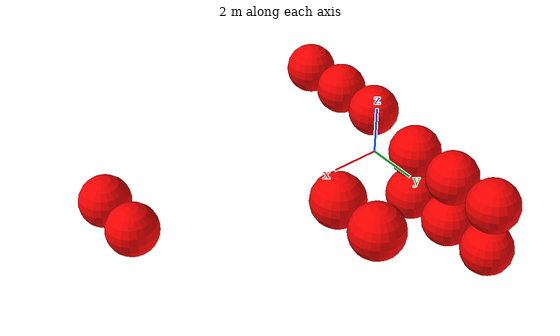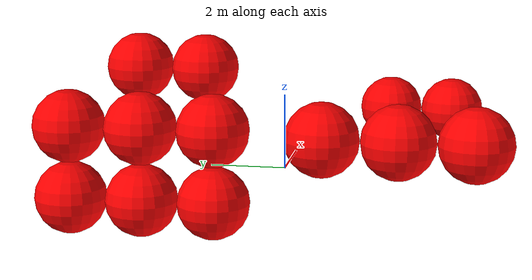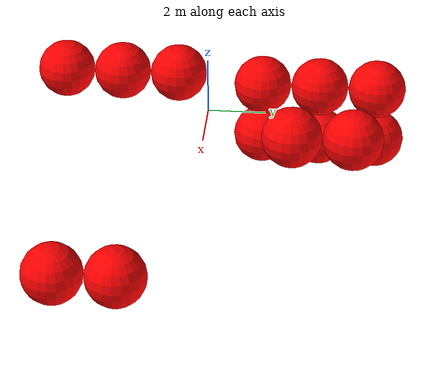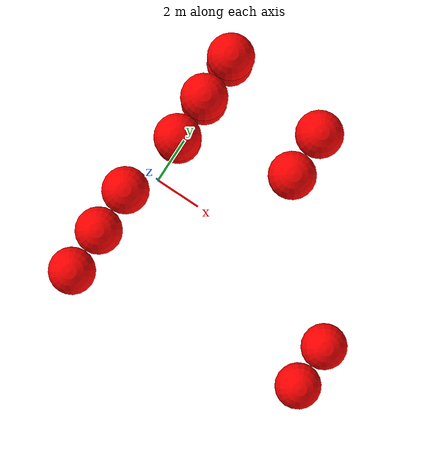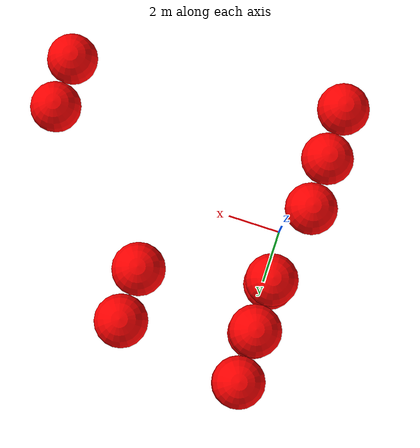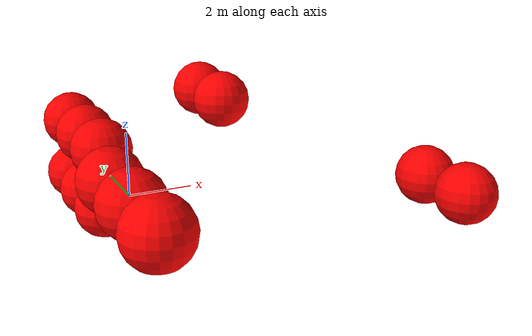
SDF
<sdf version="1.8">
 <world name="3d_world">
  <model name="obstacle_1" canonical_link="obstacle">
   <static>true</static>
   <pose relative_to="world">-0.27 1.91 -1.00 0 0 0</pose>
   <link name="obstacle">
    <pose relative_to="__model__">0.0 0 0.0 0 0 0</pose>
    <visual name="visual">
     <geometry><sphere><radius>1.00</radius></sphere></geometry>
     <material>
      <ambient>1.0 0.0 0.0 1</ambient>
      <diffuse>1.0 0.0 0.0 1</diffuse>
      <specular>1.0 0.0 0.0 1</specular>
     </material>
    </visual>
    <collision name="collision"><geometry><sphere><radius>1.00</radius></sphere></geometry></collision>
    <enable_gravity>false</enable_gravity>
   </link>
   <plugin filename="ignition-gazebo-velocity-control-system" name="ignition::gazebo::systems::VelocityControl">
    <initial_linear>0.00 0.00 0.00</initial_linear>
    <initial_angular>0 0 0</initial_angular>
   </plugin>
   <plugin filename="ignition-gazebo-odometry-publisher-system" name="ignition::gazebo::systems::OdometryPublisher">
    <dimensions>3</dimensions>
   </plugin>
  </model>
  <model name="obstacle_2" canonical_link="obstacle">
   <static>true</static>
   <pose relative_to="world">-0.27 3.91 -1.00 0 0 0</pose>
   <link name="obstacle">
    <pose relative_to="__model__">0.0 0 0.0 0 0 0</pose>
    <visual name="visual">
     <geometry><sphere><radius>1.00</radius></sphere></geometry>
     <material>
      <ambient>1.0 0.0 0.0 1</ambient>
      <diffuse>1.0 0.0 0.0 1</diffuse>
      <specular>1.0 0.0 0.0 1</specular>
     </material>
    </visual>
    <collision name="collision"><geometry><sphere><radius>1.00</radius></sphere></geometry></collision>
    <enable_gravity>false</enable_gravity>
   </link>
   <plugin filename="ignition-gazebo-velocity-control-system" name="ignition::gazebo::systems::VelocityControl">
    <initial_linear>0.00 0.00 0.00</initial_linear>
    <initial_angular>0 0 0</initial_angular>
   </plugin>
   <plugin filename="ignition-gazebo-odometry-publisher-system" name="ignition::gazebo::systems::OdometryPublisher">
    <dimensions>3</dimensions>
   </plugin>
  </model>
  <model name="obstacle_3" canonical_link="obstacle">
   <static>true</static>
   <pose relative_to="world">-0.27 5.91 -1.00 0 0 0</pose>
   <link name="obstacle">
    <pose relative_to="__model__">0.0 0 0.0 0 0 0</pose>
    <visual name="visual">
     <geometry><sphere><radius>1.00</radius></sphere></geometry>
     <material>
      <ambient>1.0 0.0 0.0 1</ambient>
      <diffuse>1.0 0.0 0.0 1</diffuse>
      <specular>1.0 0.0 0.0 1</specular>
     </material>
    </visual>
    <collision name="collision"><geometry><sphere><radius>1.00</radius></sphere></geometry></collision>
    <enable_gravity>false</enable_gravity>
   </link>
   <plugin filename="ignition-gazebo-velocity-control-system" name="ignition::gazebo::systems::VelocityControl">
    <initial_linear>0.00 0.00 0.00</initial_linear>
    <initial_angular>0 0 0</initial_angular>
   </plugin>
   <plugin filename="ignition-gazebo-odometry-publisher-system" name="ignition::gazebo::systems::OdometryPublisher">
    <dimensions>3</dimensions>
   </plugin>
  </model>
  <model name="obstacle_4" canonical_link="obstacle">
   <static>true</static>
   <pose relative_to="world">-0.27 1.91 1.00 0 0 0</pose>
   <link name="obstacle">
    <pose relative_to="__model__">0.0 0 0.0 0 0 0</pose>
    <visual name="visual">
     <geometry><sphere><radius>1.00</radius></sphere></geometry>
     <material>
      <ambient>1.0 0.0 0.0 1</ambient>
      <diffuse>1.0 0.0 0.0 1</diffuse>
      <specular>1.0 0.0 0.0 1</specular>
     </material>
    </visual>
    <collision name="collision"><geometry><sphere><radius>1.00</radius></sphere></geometry></collision>
    <enable_gravity>false</enable_gravity>
   </link>
   <plugin filename="ignition-gazebo-velocity-control-system" name="ignition::gazebo::systems::VelocityControl">
    <initial_linear>0.00 0.00 0.00</initial_linear>
    <initial_angular>0 0 0</initial_angular>
   </plugin>
   <plugin filename="ignition-gazebo-odometry-publisher-system" name="ignition::gazebo::systems::OdometryPublisher">
    <dimensions>3</dimensions>
   </plugin>
  </model>
  <model name="obstacle_5" canonical_link="obstacle">
   <static>true</static>
   <pose relative_to="world">-0.27 3.91 1.00 0 0 0</pose>
   <link name="obstacle">
    <pose relative_to="__model__">0.0 0 0.0 0 0 0</pose>
    <visual name="visual">
     <geometry><sphere><radius>1.00</radius></sphere></geometry>
     <material>
      <ambient>1.0 0.0 0.0 1</ambient>
      <diffuse>1.0 0.0 0.0 1</diffuse>
      <specular>1.0 0.0 0.0 1</specular>
     </material>
    </visual>
    <collision name="collision"><geometry><sphere><radius>1.00</radius></sphere></geometry></collision>
    <enable_gravity>false</enable_gravity>
   </link>
   <plugin filename="ignition-gazebo-velocity-control-system" name="ignition::gazebo::systems::VelocityControl">
    <initial_linear>0.00 0.00 0.00</initial_linear>
    <initial_angular>0 0 0</initial_angular>
   </plugin>
   <plugin filename="ignition-gazebo-odometry-publisher-system" name="ignition::gazebo::systems::OdometryPublisher">
    <dimensions>3</dimensions>
   </plugin>
  </model>
  <model name="obstacle_6" canonical_link="obstacle">
   <static>true</static>
   <pose relative_to="world">-0.27 5.91 1.00 0 0 0</pose>
   <link name="obstacle">
    <pose relative_to="__model__">0.0 0 0.0 0 0 0</pose>
    <visual name="visual">
     <geometry><sphere><radius>1.00</radius></sphere></geometry>
     <material>
      <ambient>1.0 0.0 0.0 1</ambient>
      <diffuse>1.0 0.0 0.0 1</diffuse>
      <specular>1.0 0.0 0.0 1</specular>
     </material>
    </visual>
    <collision name="collision"><geometry><sphere><radius>1.00</radius></sphere></geometry></collision>
    <enable_gravity>false</enable_gravity>
   </link>
   <plugin filename="ignition-gazebo-velocity-control-system" name="ignition::gazebo::systems::VelocityControl">
    <initial_linear>0.00 0.00 0.00</initial_linear>
    <initial_angular>0 0 0</initial_angular>
   </plugin>
   <plugin filename="ignition-gazebo-odometry-publisher-system" name="ignition::gazebo::systems::OdometryPublisher">
    <dimensions>3</dimensions>
   </plugin>
  </model>
  <model name="obstacle_18" canonical_link="obstacle">
   <static>true</static>
   <pose relative_to="world">-0.85 -5.11 1.00 0 0 0</pose>
   <link name="obstacle">
    <pose relative_to="__model__">0.0 0 0.0 0 0 0</pose>
    <visual name="visual">
     <geometry><sphere><radius>1.00</radius></sphere></geometry>
     <material>
      <ambient>1.0 0.0 0.0 1</ambient>
      <diffuse>1.0 0.0 0.0 1</diffuse>
      <specular>1.0 0.0 0.0 1</specular>
     </material>
    </visual>
    <collision name="collision"><geometry><sphere><radius>1.00</radius></sphere></geometry></collision>
    <enable_gravity>false</enable_gravity>
   </link>
   <plugin filename="ignition-gazebo-velocity-control-system" name="ignition::gazebo::systems::VelocityControl">
    <initial_linear>0.00 0.00 0.00</initial_linear>
    <initial_angular>0 0 0</initial_angular>
   </plugin>
   <plugin filename="ignition-gazebo-odometry-publisher-system" name="ignition::gazebo::systems::OdometryPublisher">
    <dimensions>3</dimensions>
   </plugin>
  </model>
  <model name="obstacle_19" canonical_link="obstacle">
   <static>true</static>
   <pose relative_to="world">-0.85 -3.11 1.00 0 0 0</pose>
   <link name="obstacle">
    <pose relative_to="__model__">0.0 0 0.0 0 0 0</pose>
    <visual name="visual">
     <geometry><sphere><radius>1.00</radius></sphere></geometry>
     <material>
      <ambient>1.0 0.0 0.0 1</ambient>
      <diffuse>1.0 0.0 0.0 1</diffuse>
      <specular>1.0 0.0 0.0 1</specular>
     </material>
    </visual>
    <collision name="collision"><geometry><sphere><radius>1.00</radius></sphere></geometry></collision>
    <enable_gravity>false</enable_gravity>
   </link>
   <plugin filename="ignition-gazebo-velocity-control-system" name="ignition::gazebo::systems::VelocityControl">
    <initial_linear>0.00 0.00 0.00</initial_linear>
    <initial_angular>0 0 0</initial_angular>
   </plugin>
   <plugin filename="ignition-gazebo-odometry-publisher-system" name="ignition::gazebo::systems::OdometryPublisher">
    <dimensions>3</dimensions>
   </plugin>
  </model>
  <model name="obstacle_20" canonical_link="obstacle">
   <static>true</static>
   <pose relative_to="world">-0.85 -1.11 1.00 0 0 0</pose>
   <link name="obstacle">
    <pose relative_to="__model__">0.0 0 0.0 0 0 0</pose>
    <visual name="visual">
     <geometry><sphere><radius>1.00</radius></sphere></geometry>
     <material>
      <ambient>1.0 0.0 0.0 1</ambient>
      <diffuse>1.0 0.0 0.0 1</diffuse>
      <specular>1.0 0.0 0.0 1</specular>
     </material>
    </visual>
    <collision name="collision"><geometry><sphere><radius>1.00</radius></sphere></geometry></collision>
    <enable_gravity>false</enable_gravity>
   </link>
   <plugin filename="ignition-gazebo-velocity-control-system" name="ignition::gazebo::systems::VelocityControl">
    <initial_linear>0.00 0.00 0.00</initial_linear>
    <initial_angular>0 0 0</initial_angular>
   </plugin>
   <plugin filename="ignition-gazebo-odometry-publisher-system" name="ignition::gazebo::systems::OdometryPublisher">
    <dimensions>3</dimensions>
   </plugin>
  </model>
  <model name="obstacle_21" canonical_link="obstacle">
   <static>false</static>
   <pose relative_to="world">4.52 3.15 1.85 0 0 0</pose>
   <link name="obstacle">
    <pose relative_to="__model__">0.0 0 0.0 0 0 0</pose>
    <visual name="visual">
     <geometry><sphere><radius>1.00</radius></sphere></geometry>
     <material>
      <ambient>1.0 0.0 0.0 1</ambient>
      <diffuse>1.0 0.0 0.0 1</diffuse>
      <specular>1.0 0.0 0.0 1</specular>
     </material>
    </visual>
    <collision name="collision"><geometry><sphere><radius>1.00</radius></sphere></geometry></collision>
    <enable_gravity>false</enable_gravity>
   </link>
   <plugin filename="ignition-gazebo-velocity-control-system" name="ignition::gazebo::systems::VelocityControl">
    <initial_linear>0.00 -1.41 -0.61</initial_linear>
    <initial_angular>0 0 0</initial_angular>
   </plugin>
   <plugin filename="ignition-gazebo-odometry-publisher-system" name="ignition::gazebo::systems::OdometryPublisher">
    <dimensions>3</dimensions>
   </plugin>
  </model>
  <model name="obstacle_22" canonical_link="obstacle">
   <static>false</static>
   <pose relative_to="world">4.52 5.15 1.85 0 0 0</pose>
   <link name="obstacle">
    <pose relative_to="__model__">0.0 0 0.0 0 0 0</pose>
    <visual name="visual">
     <geometry><sphere><radius>1.00</radius></sphere></geometry>
     <material>
      <ambient>1.0 0.0 0.0 1</ambient>
      <diffuse>1.0 0.0 0.0 1</diffuse>
      <specular>1.0 0.0 0.0 1</specular>
     </material>
    </visual>
    <collision name="collision"><geometry><sphere><radius>1.00</radius></sphere></geometry></collision>
    <enable_gravity>false</enable_gravity>
   </link>
   <plugin filename="ignition-gazebo-velocity-control-system" name="ignition::gazebo::systems::VelocityControl">
    <initial_linear>0.00 -1.41 -0.61</initial_linear>
    <initial_angular>0 0 0</initial_angular>
   </plugin>
   <plugin filename="ignition-gazebo-odometry-publisher-system" name="ignition::gazebo::systems::OdometryPublisher">
    <dimensions>3</dimensions>
   </plugin>
  </model>
  <model name="obstacle_23" canonical_link="obstacle">
   <static>false</static>
   <pose relative_to="world">9.76 -3.99 -0.23 0 0 0</pose>
   <link name="obstacle">
    <pose relative_to="__model__">0.0 0 0.0 0 0 0</pose>
    <visual name="visual">
     <geometry><sphere><radius>1.00</radius></sphere></geometry>
     <material>
      <ambient>1.0 0.0 0.0 1</ambient>
      <diffuse>1.0 0.0 0.0 1</diffuse>
      <specular>1.0 0.0 0.0 1</specular>
     </material>
    </visual>
    <collision name="collision"><geometry><sphere><radius>1.00</radius></sphere></geometry></collision>
    <enable_gravity>false</enable_gravity>
   </link>
   <plugin filename="ignition-gazebo-velocity-control-system" name="ignition::gazebo::systems::VelocityControl">
    <initial_linear>0.00 1.86 0.05</initial_linear>
    <initial_angular>0 0 0</initial_angular>
   </plugin>
   <plugin filename="ignition-gazebo-odometry-publisher-system" name="ignition::gazebo::systems::OdometryPublisher">
    <dimensions>3</dimensions>
   </plugin>
  </model>
  <model name="obstacle_24" canonical_link="obstacle">
   <static>false</static>
   <pose relative_to="world">9.76 -1.99 -0.23 0 0 0</pose>
   <link name="obstacle">
    <pose relative_to="__model__">0.0 0 0.0 0 0 0</pose>
    <visual name="visual">
     <geometry><sphere><radius>1.00</radius></sphere></geometry>
     <material>
      <ambient>1.0 0.0 0.0 1</ambient>
      <diffuse>1.0 0.0 0.0 1</diffuse>
      <specular>1.0 0.0 0.0 1</specular>
     </material>
    </visual>
    <collision name="collision"><geometry><sphere><radius>1.00</radius></sphere></geometry></collision>
    <enable_gravity>false</enable_gravity>
   </link>
   <plugin filename="ignition-gazebo-velocity-control-system" name="ignition::gazebo::systems::VelocityControl">
    <initial_linear>0.00 1.86 0.05</initial_linear>
    <initial_angular>0 0 0</initial_angular>
   </plugin>
   <plugin filename="ignition-gazebo-odometry-publisher-system" name="ignition::gazebo::systems::OdometryPublisher">
    <dimensions>3</dimensions>
   </plugin>
  </model>
 </world>
</sdf>
